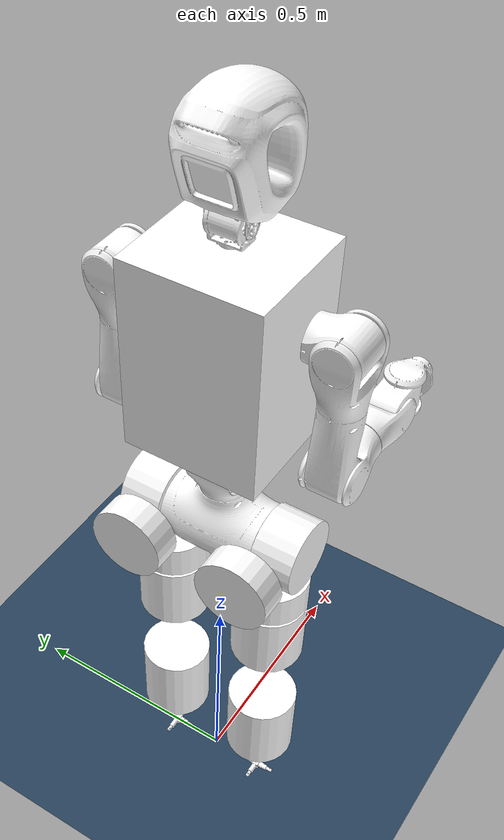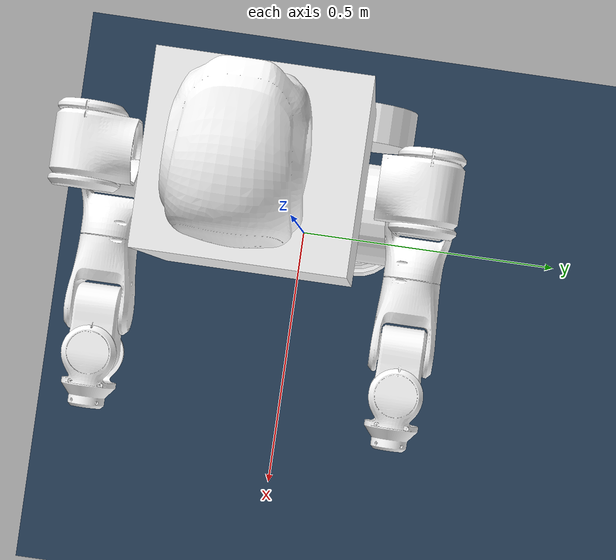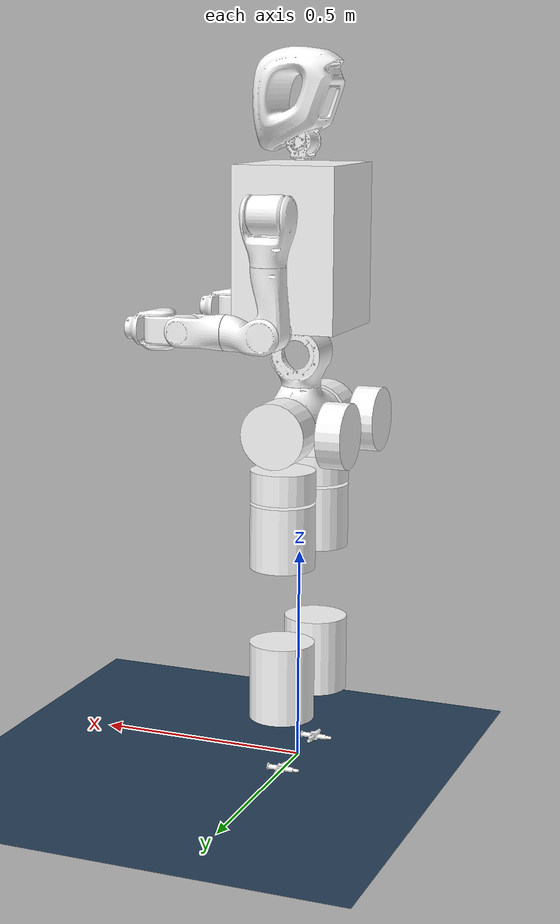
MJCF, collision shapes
<mujoco model="LingLong2 scene">
  <include file="LingLong2.0.xml"/>

  <statistic center="0.1 0 0.1" extent="0.8"/>

  <visual>
    <global offwidth="1920" offheight="1080" azimuth="-140" elevation="-30"/>
    <headlight diffuse="0.6 0.6 0.6" ambient="0.3 0.3 0.3" specular="0 0 0"/>
    <rgba haze="0.15 0.25 0.35 1"/>
  </visual>

  <asset>
    <texture type="skybox" builtin="gradient" rgb1="0.6 0.7 0.8" rgb2="0.35 0.4 0.45" width="512" height="3072"/>
    <texture type="2d" name="groundplane" builtin="checker" mark="edge" rgb1="0.2 0.3 0.4"
             rgb2="0.1 0.2 0.3" markrgb="0.8 0.8 0.8" width="300" height="300"/>
    <material name="groundplane" texture="groundplane" texuniform="true" texrepeat="5 5"
              reflectance="0.2"/>
  </asset>

  <worldbody>
    <light pos="0 0 1.5" dir="0 0 -1" directional="true"/>
    <geom name="floor" size="0 0 0.05" type="plane" material="groundplane"/>
  </worldbody>
</mujoco>

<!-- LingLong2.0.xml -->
<mujoco model="LingLong2.0">
  <compiler angle="radian" meshdir="meshes/"/>

  <asset>
    <mesh name="base_link" content_type="model/stl" file="base_link.STL"/>
    <mesh name="left_hip_pitch_link" content_type="model/stl" file="left_hip_pitch_link.STL"/>
    <mesh name="left_hip_roll_link" content_type="model/stl" file="left_hip_roll_link.STL"/>
    <mesh name="left_hip_yaw_link" content_type="model/stl" file="left_hip_yaw_link.STL"/>
    <mesh name="left_knee_link" content_type="model/stl" file="left_knee_link.STL"/>
    <mesh name="left_ankle_pitch_link" content_type="model/stl" file="left_ankle_pitch_link.STL"/>
    <mesh name="left_ankle_roll_link" content_type="model/stl" file="left_ankle_roll_link.STL"/>
    <mesh name="right_hip_pitch_link" content_type="model/stl" file="right_hip_pitch_link.STL"/>
    <mesh name="right_hip_roll_link" content_type="model/stl" file="right_hip_roll_link.STL"/>
    <mesh name="right_hip_yaw_link" content_type="model/stl" file="right_hip_yaw_link.STL"/>
    <mesh name="right_knee_link" content_type="model/stl" file="right_knee_link.STL"/>
    <mesh name="right_ankle_pitch_link" content_type="model/stl" file="right_ankle_pitch_link.STL"/>
    <mesh name="right_ankle_roll_link" content_type="model/stl" file="right_ankle_roll_link.STL"/>
    <mesh name="waist_yaw_link" content_type="model/stl" file="waist_yaw_link.STL"/>
    <mesh name="waist_pitch_link" content_type="model/stl" file="waist_pitch_link.STL"/>
    <mesh name="head_yaw_link" content_type="model/stl" file="head_yaw_link.STL"/>
    <mesh name="head_pitch_link" content_type="model/stl" file="head_pitch_link.STL"/>
    <mesh name="left_shoulder_pitch_link" content_type="model/stl" file="left_shoulder_pitch_link.STL"/>
    <mesh name="left_shoulder_roll_link" content_type="model/stl" file="left_shoulder_roll_link.STL"/>
    <mesh name="left_shoulder_yaw_link" content_type="model/stl" file="left_shoulder_yaw_link.STL"/>
    <mesh name="left_elbow_link" content_type="model/stl" file="left_elbow_link.STL"/>
    <mesh name="left_wrist_roll_link" content_type="model/stl" file="left_wrist_roll_link.STL"/>
    <mesh name="left_wrist_pitch_link" content_type="model/stl" file="left_wrist_pitch_link.STL"/>
    <mesh name="left_wrist_yaw_link" content_type="model/stl" file="left_wrist_yaw_link.STL"/>
    <mesh name="right_shoulder_pitch_link" content_type="model/stl" file="right_shoulder_pitch_link.STL"/>
    <mesh name="right_shoulder_roll_link" content_type="model/stl" file="right_shoulder_roll_link.STL"/>
    <mesh name="right_shoulder_yaw_link" content_type="model/stl" file="right_shoulder_yaw_link.STL"/>
    <mesh name="right_elbow_link" content_type="model/stl" file="right_elbow_link.STL"/>
    <mesh name="right_wrist_roll_link" content_type="model/stl" file="right_wrist_roll_link.STL"/>
    <mesh name="right_wrist_pitch_link" content_type="model/stl" file="right_wrist_pitch_link.STL"/>
    <mesh name="right_wrist_yaw_link" content_type="model/stl" file="right_wrist_yaw_link.STL"/>
  </asset>

  <worldbody>
    <body name="base_link" pos="0 0 0.9">
    <freejoint name="base_free"/>
    <geom type="mesh" contype="0" conaffinity="0" group="1" rgba="1 1 1 1" density="0" mesh="base_link"/>
    <geom type="mesh" rgba="1 1 1 1" mesh="base_link"/>
    <body name="left_hip_pitch_link" pos="0 0.1138 -0.0925">
      <inertial pos="-0.086806 0.011277 -0.000299" quat="0.372376 0.37095 0.598215 0.604873" mass="2.11862" diaginertia="0.00929361 0.00859932 0.00465508"/>
      <joint name="left_hip_pitch_joint" range="-2.75762 0.872665" actuatorfrcrange="-330 330" axis="0 1 0"/>
      <geom type="mesh" contype="0" conaffinity="0" group="1" rgba="1 1 1 1" density="0" mesh="left_hip_pitch_link"/>
      <geom size="0.075 0.0425" pos="0 0.03 0" quat="0.707388 0.706825 0 0" type="cylinder" rgba="1 1 1 1"/>
      <body name="left_hip_roll_link">
        <inertial pos="-0.04621 9e-06 -0.0909" quat="-0.000447503 0.897666 1.99578e-05 0.440677" mass="2.10285" diaginertia="0.0180469 0.01764 0.00546111"/>
        <joint name="left_hip_roll_joint" range="-0.523599 2.0944" actuatorfrcrange="-150 150" axis="1 0 0"/>
        <geom type="mesh" contype="0" conaffinity="0" group="1" rgba="1 1 1 1" density="0" mesh="left_hip_roll_link"/>
        <geom size="0.075 0.029" pos="-0.13 0 0" quat="0.707388 0 0.706825 0" type="cylinder" rgba="1 1 1 1"/>
        <geom size="0.075 0.035" pos="0 0 -0.123" type="cylinder" rgba="1 1 1 1"/>
        <body name="left_hip_yaw_link">
          <inertial pos="0.004294 -0.006559 -0.313266" quat="0.725117 -0.00458716 0.0150379 0.688446" mass="3.53229" diaginertia="0.0302129 0.0294331 0.00774294"/>
          <joint name="left_hip_yaw_joint" range="-2.79253 2.79253" actuatorfrcrange="-130 130" axis="0 1.4936e-05 1"/>
          <geom type="mesh" contype="0" conaffinity="0" group="1" rgba="1 1 1 1" density="0" mesh="left_hip_yaw_link"/>
          <geom size="0.075 0.075" pos="0 0 -0.24" type="cylinder" rgba="1 1 1 1"/>
          <body name="left_knee_link" pos="0 0 -0.3823">
            <inertial pos="0.002595 -0.000878 -0.180857" quat="0.704888 0.0198592 -0.0219482 0.7087" mass="4.1231" diaginertia="0.0467021 0.0452833 0.00746663"/>
            <joint name="left_knee_joint" range="-0.174533 1.90241" actuatorfrcrange="-150 150" axis="0 1 1.4936e-05"/>
            <geom type="mesh" contype="0" conaffinity="0" group="1" rgba="1 1 1 1" density="0" mesh="left_knee_link"/>
            <geom size="0.075 0.09" pos="0 0 -0.2" type="cylinder" rgba="1 1 1 1"/>
            <body name="left_ankle_pitch_link" pos="0 0 -0.42">
              <inertial pos="-0.000216 0 0" quat="0 0.707107 0 0.707107" mass="0.139668" diaginertia="5.6e-05 3.1e-05 2.9e-05"/>
              <joint name="left_ankle_pitch_joint" range="-0.802851 0.602139" actuatorfrcrange="-90 90" axis="0 1 1.4936e-05"/>
              <geom type="mesh" contype="0" conaffinity="0" group="1" rgba="1 1 1 1" density="0" mesh="left_ankle_pitch_link"/>
              <geom type="mesh" rgba="1 1 1 1" mesh="left_ankle_pitch_link"/>
              <body name="left_ankle_roll_link">
                <inertial pos="0.008646 4.5e-05 -0.044395" quat="-0.000247978 0.725518 2.51124e-05 0.688203" mass="1.10301" diaginertia="0.00639506 0.006049 0.000984944"/>
                <joint name="left_ankle_roll_joint" range="-0.523599 0.523599" actuatorfrcrange="-90 90" axis="1 0 0"/>
                <geom type="mesh" contype="0" conaffinity="0" group="1" rgba="1 1 1 1" density="0" mesh="left_ankle_roll_link"/>
                <geom size="0.007 0.129" pos="0.02 0 -0.069" quat="0.707105 0 -0.707108 0" type="cylinder" rgba="1 1 1 1"/>
                <geom size="0.007 0.109" pos="0.02 -0.04 -0.069" quat="0.707105 0 -0.707108 0" type="cylinder" rgba="1 1 1 1"/>
                <geom size="0.007 0.109" pos="0.02 0.04 -0.069" quat="0.707105 0 -0.707108 0" type="cylinder" rgba="1 1 1 1"/>
                <geom size="0.007 0.129" pos="0.02 -0.02 -0.069" quat="0.707105 0 -0.707108 0" type="cylinder" rgba="1 1 1 1"/>
                <geom size="0.007 0.129" pos="0.02 0.02 -0.069" quat="0.707105 0 -0.707108 0" type="cylinder" rgba="1 1 1 1"/>
              </body>
            </body>
          </body>
        </body>
      </body>
    </body>
    <body name="right_hip_pitch_link" pos="0 -0.1138 -0.0925">
      <inertial pos="-0.086806 -0.011277 -0.000299" quat="0.604873 0.598215 0.37095 0.372376" mass="2.11862" diaginertia="0.00929361 0.00859932 0.00465508"/>
      <joint name="right_hip_pitch_joint" range="-2.75762 0.872665" actuatorfrcrange="-330 330" axis="0 1 0"/>
      <geom type="mesh" contype="0" conaffinity="0" group="1" rgba="1 1 1 1" density="0" mesh="right_hip_pitch_link"/>
      <geom size="0.075 0.0425" pos="0 -0.03 0" quat="0.707388 0.706825 0 0" type="cylinder" rgba="1 1 1 1"/>
      <body name="right_hip_roll_link">
        <inertial pos="-0.04621 9e-06 -0.0909" quat="-0.000447503 0.897666 1.99578e-05 0.440677" mass="2.10285" diaginertia="0.0180469 0.01764 0.00546111"/>
        <joint name="right_hip_roll_joint" range="-2.0944 0.523599" actuatorfrcrange="-150 150" axis="1 0 0"/>
        <geom type="mesh" contype="0" conaffinity="0" group="1" rgba="1 1 1 1" density="0" mesh="right_hip_roll_link"/>
        <geom size="0.075 0.029" pos="-0.13 0 0" quat="0.707388 0 0.706825 0" type="cylinder" rgba="1 1 1 1"/>
        <geom size="0.075 0.035" pos="0 0 -0.123" type="cylinder" rgba="1 1 1 1"/>
        <body name="right_hip_yaw_link">
          <inertial pos="0.004294 0.006559 -0.313266" quat="0.688446 0.0150379 -0.00458716 0.725117" mass="3.53229" diaginertia="0.0302129 0.0294331 0.00774294"/>
          <joint name="right_hip_yaw_joint" range="-2.79253 2.79253" actuatorfrcrange="-130 130" axis="0 -1.4936e-05 1"/>
          <geom type="mesh" contype="0" conaffinity="0" group="1" rgba="1 1 1 1" density="0" mesh="right_hip_yaw_link"/>
          <geom size="0.075 0.075" pos="0 0 -0.24" type="cylinder" rgba="1 1 1 1"/>
          <body name="right_knee_link" pos="0 0 -0.3823">
            <inertial pos="0.002595 0.000878 -0.180857" quat="0.7087 -0.0219482 0.0198592 0.704888" mass="4.1231" diaginertia="0.0467021 0.0452833 0.00746663"/>
            <joint name="right_knee_joint" range="-0.174533 1.90241" actuatorfrcrange="-150 150" axis="0 1 1.4936e-05"/>
            <geom type="mesh" contype="0" conaffinity="0" group="1" rgba="1 1 1 1" density="0" mesh="right_knee_link"/>
            <geom size="0.075 0.09" pos="0 0 -0.2" type="cylinder" rgba="1 1 1 1"/>
            <body name="right_ankle_pitch_link" pos="0 0 -0.42">
              <inertial pos="-0.000216 0 0" quat="0 0.707107 0 0.707107" mass="0.139668" diaginertia="5.6e-05 3.1e-05 2.9e-05"/>
              <joint name="right_ankle_pitch_joint" range="-0.802851 0.602139" actuatorfrcrange="-90 90" axis="0 1 1.4936e-05"/>
              <geom type="mesh" contype="0" conaffinity="0" group="1" rgba="1 1 1 1" density="0" mesh="right_ankle_pitch_link"/>
              <geom type="mesh" rgba="1 1 1 1" mesh="right_ankle_pitch_link"/>
              <body name="right_ankle_roll_link">
                <inertial pos="0.008646 -4.5e-05 -0.044395" quat="0.000247978 0.725518 -2.51124e-05 0.688203" mass="1.10301" diaginertia="0.00639506 0.006049 0.000984944"/>
                <joint name="right_ankle_roll_joint" range="-0.523599 0.523599" actuatorfrcrange="-90 90" axis="1 0 0"/>
                <geom type="mesh" contype="0" conaffinity="0" group="1" rgba="1 1 1 1" density="0" mesh="right_ankle_roll_link"/>
                <geom size="0.007 0.129" pos="0.02 0 -0.069" quat="0.707105 0 -0.707108 0" type="cylinder" rgba="1 1 1 1"/>
                <geom size="0.007 0.109" pos="0.02 -0.04 -0.069" quat="0.707105 0 -0.707108 0" type="cylinder" rgba="1 1 1 1"/>
                <geom size="0.007 0.109" pos="0.02 0.04 -0.069" quat="0.707105 0 -0.707108 0" type="cylinder" rgba="1 1 1 1"/>
                <geom size="0.007 0.129" pos="0.02 -0.02 -0.069" quat="0.707105 0 -0.707108 0" type="cylinder" rgba="1 1 1 1"/>
                <geom size="0.007 0.129" pos="0.02 0.02 -0.069" quat="0.707105 0 -0.707108 0" type="cylinder" rgba="1 1 1 1"/>
              </body>
            </body>
          </body>
        </body>
      </body>
    </body>
    <body name="waist_yaw_link" pos="0 0 0.0708">
      <inertial pos="9.3e-05 0.001874 -0.005879" quat="0.705474 -0.0543552 -0.0399379 0.705519" mass="1.60764" diaginertia="0.00355829 0.00294534 0.00286937"/>
      <joint name="waist_yaw_joint" axis="0 0 1" range="-2.61799 2.61799" actuatorfrcrange="-130 130"/>
      <geom type="mesh" contype="0" conaffinity="0" group="1" rgba="1 1 1 1" density="0" mesh="waist_yaw_link"/>
      <geom type="mesh" rgba="1 1 1 1" mesh="waist_yaw_link"/>
      <body name="waist_pitch_link">
        <inertial pos="-0.018183 0.004349 0.215567" quat="0.996334 0.0325333 0.0163812 -0.0774128" mass="14.2956" diaginertia="0.244354 0.210587 0.125061"/>
        <joint name="waist_pitch_joint" range="-0.523599 0.523599" actuatorfrcrange="-130 130" axis="0 1 0"/>
        <geom type="mesh" contype="0" conaffinity="0" group="1" rgba="1 1 1 1" density="0" mesh="waist_pitch_link"/>
        <geom size="0.12 0.13 0.185" pos="0 0 0.245" type="box" rgba="1 1 1 1"/>
        <body name="head_yaw_link" pos="0 0 0.47609">
          <inertial pos="6.8e-05 0.001906 -0.001646" quat="0.707107 0.707107 0 0" mass="0.425427" diaginertia="0.00011 9.2e-05 9e-05"/>
          <joint name="head_yaw_joint" axis="0 0 1" range="-1.5708 1.5708" actuatorfrcrange="-27 27"/>
          <geom type="mesh" contype="0" conaffinity="0" group="1" rgba="1 1 1 1" density="0" mesh="head_yaw_link"/>
          <geom type="mesh" rgba="1 1 1 1" mesh="head_yaw_link"/>
          <body name="head_pitch_link">
            <inertial pos="0.013128 0.000316 0.100168" quat="0.684003 -0.1897 -0.194852 0.676895" mass="0.959359" diaginertia="0.00645021 0.00527609 0.00347569"/>
            <joint name="head_pitch_joint" range="-0.785398 0.785398" actuatorfrcrange="-27 27" axis="0 1 0"/>
            <geom type="mesh" contype="0" conaffinity="0" group="1" rgba="1 1 1 1" density="0" mesh="head_pitch_link"/>
            <geom type="mesh" rgba="1 1 1 1" mesh="head_pitch_link"/>
          </body>
        </body>
        <body name="left_shoulder_pitch_link" pos="0 0.21175 0.32804">
          <inertial pos="-0.005683 -0.007852 7.2e-05" quat="0.690719 0.716915 0.035467 -0.0876488" mass="1.13233" diaginertia="0.00106325 0.00104987 0.000747878"/>
          <joint name="left_shoulder_pitch_joint" range="-2.96706 2.96706" actuatorfrcrange="-97 97" axis="0 1 0"/>
          <geom type="mesh" contype="0" conaffinity="0" group="1" rgba="1 1 1 1" density="0" mesh="left_shoulder_pitch_link"/>
          <geom type="mesh" rgba="1 1 1 1" mesh="left_shoulder_pitch_link"/>
          <body name="left_shoulder_roll_link">
            <inertial pos="-0.001957 0 -0.059713" quat="0.706173 -0.0363325 -0.0363325 0.706173" mass="0.893031" diaginertia="0.002027 0.00163878 0.00109022"/>
            <joint name="left_shoulder_roll_joint" range="-0.0872665 3.05433" actuatorfrcrange="-97 97" axis="1 0 0"/>
            <geom type="mesh" contype="0" conaffinity="0" group="1" rgba="1 1 1 1" density="0" mesh="left_shoulder_roll_link"/>
            <geom type="mesh" rgba="1 1 1 1" mesh="left_shoulder_roll_link"/>
            <body name="left_shoulder_yaw_link">
              <inertial pos="-0.004186 -0.002151 -0.22343" quat="0.959028 -0.00419165 -0.0329792 -0.281354" mass="0.958875" diaginertia="0.00345777 0.00345237 0.000708862"/>
              <joint name="left_shoulder_yaw_joint" axis="0 0 1" range="-2.96706 2.96706" actuatorfrcrange="-27 27"/>
              <geom type="mesh" contype="0" conaffinity="0" group="1" rgba="1 1 1 1" density="0" mesh="left_shoulder_yaw_link"/>
              <geom type="mesh" rgba="1 1 1 1" mesh="left_shoulder_yaw_link"/>
              <body name="left_elbow_link" pos="5e-05 0 -0.26">
                <inertial pos="0.042253 -0.001579 -0.003042" quat="0.000636661 0.710195 0.00773058 0.703962" mass="0.422895" diaginertia="0.00109807 0.000846985 0.000643945"/>
                <joint name="left_elbow_joint" range="-0.785398 1.5708" actuatorfrcrange="-27 27" axis="0 1 0"/>
                <geom type="mesh" contype="0" conaffinity="0" group="1" rgba="1 1 1 1" density="0" mesh="left_elbow_link"/>
                <geom type="mesh" rgba="1 1 1 1" mesh="left_elbow_link"/>
                <body name="left_wrist_roll_link" pos="0.198 0 0">
                  <inertial pos="-0.054086 -0.001143 3e-05" quat="0.0207748 0.706802 -0.0207748 0.706802" mass="0.699632" diaginertia="0.001133 0.000952941 0.000680059"/>
                  <joint name="left_wrist_roll_joint" range="-2.96706 2.96706" actuatorfrcrange="-7 7" axis="1 0 0"/>
                  <geom type="mesh" contype="0" conaffinity="0" group="1" rgba="1 1 1 1" density="0" mesh="left_wrist_roll_link"/>
                  <geom type="mesh" rgba="1 1 1 1" mesh="left_wrist_roll_link"/>
                  <body name="left_wrist_pitch_link">
                    <inertial pos="0.030943 -0.00073 0.001059" quat="0.536476 0.445315 0.538992 0.472627" mass="0.975584" diaginertia="0.00143392 0.00143136 0.000580719"/>
                    <joint name="left_wrist_pitch_joint" range="-1.39626 1.39626" actuatorfrcrange="-7 7" axis="0 1 0"/>
                    <geom type="mesh" contype="0" conaffinity="0" group="1" rgba="1 1 1 1" density="0" mesh="left_wrist_pitch_link"/>
                    <geom type="mesh" rgba="1 1 1 1" mesh="left_wrist_pitch_link"/>
                    <body name="left_wrist_yaw_link" pos="0.062 0 0">
                      <inertial pos="0.016171 1e-06 0.001559" quat="0.706966 0.0141111 0.0141111 0.706966" mass="0.191947" diaginertia="0.000363 0.00027304 0.00024796"/>
                      <joint name="left_wrist_yaw_joint" axis="0 0 1" range="-1.39626 1.39626" actuatorfrcrange="-7 7"/>
                      <geom type="mesh" contype="0" conaffinity="0" group="1" rgba="1 1 1 1" density="0" mesh="left_wrist_yaw_link"/>
                      <geom type="mesh" rgba="1 1 1 1" mesh="left_wrist_yaw_link"/>
                    </body>
                  </body>
                </body>
              </body>
            </body>
          </body>
        </body>
        <body name="right_shoulder_pitch_link" pos="0 -0.21175 0.32804">
          <inertial pos="-0.005683 0.007852 7.2e-05" quat="0.716915 0.690719 0.0876488 -0.035467" mass="1.13233" diaginertia="0.00106325 0.00104987 0.000747878"/>
          <joint name="right_shoulder_pitch_joint" range="-2.96706 2.96706" actuatorfrcrange="-97 97" axis="0 1 0"/>
          <geom type="mesh" contype="0" conaffinity="0" group="1" rgba="1 1 1 1" density="0" mesh="right_shoulder_pitch_link"/>
          <geom type="mesh" rgba="1 1 1 1" mesh="right_shoulder_pitch_link"/>
          <body name="right_shoulder_roll_link">
            <inertial pos="-0.001957 0 -0.059713" quat="0.706173 -0.0363325 -0.0363325 0.706173" mass="0.893031" diaginertia="0.002027 0.00163878 0.00109022"/>
            <joint name="right_shoulder_roll_joint" range="-3.05433 0.0872665" actuatorfrcrange="-97 97" axis="1 0 0"/>
            <geom type="mesh" contype="0" conaffinity="0" group="1" rgba="1 1 1 1" density="0" mesh="right_shoulder_roll_link"/>
            <geom type="mesh" rgba="1 1 1 1" mesh="right_shoulder_roll_link"/>
            <body name="right_shoulder_yaw_link">
              <inertial pos="-0.004186 0.002151 -0.22343" quat="0.959028 0.00419165 -0.0329792 0.281354" mass="0.958875" diaginertia="0.00345777 0.00345237 0.000708862"/>
              <joint name="right_shoulder_yaw_joint" axis="0 0 1" range="-2.96706 2.96706" actuatorfrcrange="-27 27"/>
              <geom type="mesh" contype="0" conaffinity="0" group="1" rgba="1 1 1 1" density="0" mesh="right_shoulder_yaw_link"/>
              <geom type="mesh" rgba="1 1 1 1" mesh="right_shoulder_yaw_link"/>
              <body name="right_elbow_link" pos="0 0 -0.26">
                <inertial pos="0.042253 0.001579 -0.003042" quat="-0.000636661 0.710195 -0.00773058 0.703962" mass="0.422895" diaginertia="0.00109807 0.000846985 0.000643945"/>
                <joint name="right_elbow_joint" range="-0.785398 1.5708" actuatorfrcrange="-27 27" axis="0 1 0"/>
                <geom type="mesh" contype="0" conaffinity="0" group="1" rgba="1 1 1 1" density="0" mesh="right_elbow_link"/>
                <geom type="mesh" rgba="1 1 1 1" mesh="right_elbow_link"/>
                <body name="right_wrist_roll_link" pos="0.198 0 0">
                  <inertial pos="-0.054086 0.001143 3e-05" quat="-0.0207748 0.706802 0.0207748 0.706802" mass="0.699632" diaginertia="0.001133 0.000952941 0.000680059"/>
                  <joint name="right_wrist_roll_joint" range="-2.96706 2.96706" actuatorfrcrange="-7 7" axis="1 0 0"/>
                  <geom type="mesh" contype="0" conaffinity="0" group="1" rgba="1 1 1 1" density="0" mesh="right_wrist_roll_link"/>
                  <geom type="mesh" rgba="1 1 1 1" mesh="right_wrist_roll_link"/>
                  <body name="right_wrist_pitch_link">
                    <inertial pos="0.030943 0.00073 0.001059" quat="0.472627 0.538992 0.445315 0.536476" mass="0.975584" diaginertia="0.00143392 0.00143136 0.000580719"/>
                    <joint name="right_wrist_pitch_joint" range="-1.39626 1.39626" actuatorfrcrange="-7 7" axis="0 1 0"/>
                    <geom type="mesh" contype="0" conaffinity="0" group="1" rgba="1 1 1 1" density="0" mesh="right_wrist_pitch_link"/>
                    <geom type="mesh" rgba="1 1 1 1" mesh="right_wrist_pitch_link"/>
                    <body name="right_wrist_yaw_link" pos="0.062 0 0">
                      <inertial pos="0.016171 1e-06 0.001559" quat="0.706966 0.0141111 0.0141111 0.706966" mass="0.191947" diaginertia="0.000363 0.00027304 0.00024796"/>
                      <joint name="right_wrist_yaw_joint" axis="0 0 1" range="-1.39626 1.39626" actuatorfrcrange="-7 7"/>
                      <geom type="mesh" contype="0" conaffinity="0" group="1" rgba="1 1 1 1" density="0" mesh="right_wrist_yaw_link"/>
                      <geom type="mesh" rgba="1 1 1 1" mesh="right_wrist_yaw_link"/>
                    </body>
                  </body>
                </body>
              </body>
            </body>
          </body>
        </body>
      </body>
    </body>
  </body>
  </worldbody>
</mujoco>
